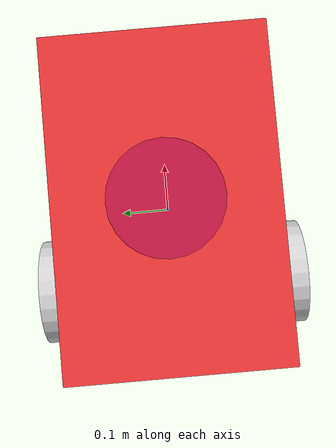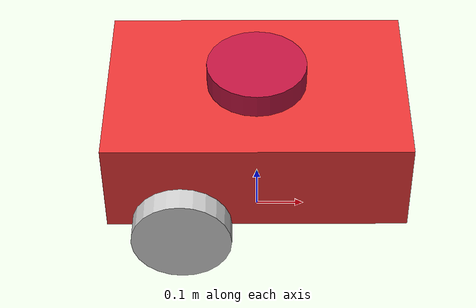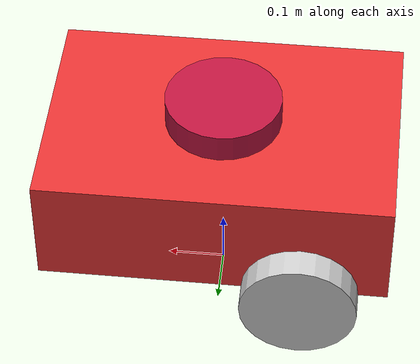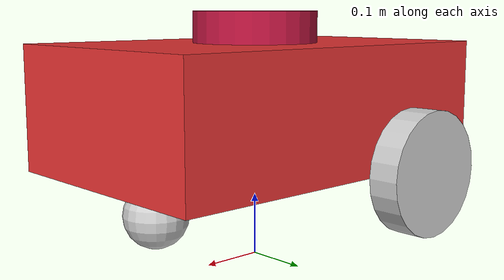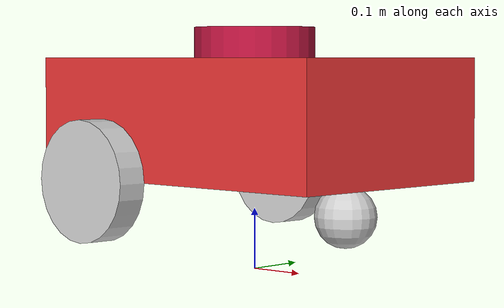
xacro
<?xml version="1.0"?>
<robot xmlns:xacro="http://www.ros.org/wiki/xacro" name="my_robot">

<material name="grey">
        <color rgba="0.8 0.8 0.8 1" />
    </material>
    <material name="black">
        <color rgba="0.9 0.2 0.2 1" />
    </material>

    <material name="orange">
        <color rgba="0.75 0.08 0.25 1" />
    </material>

    <!--.......................MAIN BODY............................-->

     <xacro:include filename="gazebo.xacro" />

    <link name = "base_footprint"/>

    <link name = "base_link">
        <visual>
            <origin xyz="0 0 0.1" rpy="0 0 0" />
            <material name="black" />
            <geometry>
                <box size="0.6 0.4 0.2" />
            </geometry>
        </visual>

        <collision>
            <geometry>
                <box size="0.6 0.4 0.2" />
            </geometry>
            <origin xyz="0 0 0.1" rpy="0 0 0" />
        </collision>

        <inertial>
            <origin xyz="0 0 0.1" rpy="0 0 0" />
            <mass value="2.0"/>
            <inertia ixx="0.0333" iyy="0.0667" izz="0.0867"
                     ixy="0.0" ixz="0.0" iyz="0.0"/>
        </inertial>

    </link>

    <link name="right_wheel_link">
        <visual>
            <geometry>
                <cylinder radius="0.1" length="0.05" />
            </geometry>
            <origin xyz="0 0 0" rpy="1.57 0 0" />
            <material name="grey" />
        </visual>

        <collision>
            <geometry>
                <cylinder radius="0.1" length="0.05" />
            </geometry>
            <origin xyz="0 0 0" rpy="1.57 0 0" />
            <surface>
                <friction>
                    <ode>
                        <mu>1.0</mu>
                        <mu2>1.0</mu2>
                    </ode>
                </friction>
            </surface>
        </collision>

        <inertial>
            <origin xyz="0 0 0" rpy="1.57 0 0" />
            <mass value="0.4"/>
            <inertia ixx="0.00104" iyy="0.00104" izz="0.002"
                     ixy="0.0" ixz="0.0" iyz="0.0"/>
        </inertial>

    </link>

    <link name="left_wheel_link">
        <visual>
            <geometry>
                <cylinder radius="0.1" length="0.05" />
            </geometry>
            <origin xyz="0 0 0" rpy="1.57 0 0" />
            <material name="grey" />
        </visual>

        <collision>
            <geometry>
                <cylinder radius="0.1" length="0.05" />
            </geometry>
            <origin xyz="0 0 0" rpy="1.57 0 0" />
            <surface>
                <friction>
                    <ode>
                        <mu>1.0</mu>
                        <mu2>1.0</mu2>
                    </ode>
                </friction>
            </surface>
        </collision>

        <inertial>
            <origin xyz="0 0 0" rpy="1.57 0 0" />
            <mass value="0.4"/>
            <inertia ixx="0.00104" iyy="0.00104" izz="0.002"
                     ixy="0.0" ixz="0.0" iyz="0.0"/>
        </inertial>

    </link>

    <link name="caster">
        <visual>
            <geometry>
                <sphere radius="0.05" />
            </geometry>
            <origin xyz="0 0 0" rpy="0 0 0" />
            <material name="grey" />
        </visual>
        <collision>
            <geometry>
                <sphere radius="0.05" />
            </geometry>
            <origin xyz="0 0 0" rpy="0 0 0" />
            <surface>
                <friction>
                    <ode>
                        <mu>0.01</mu>
                        <mu2>0.01</mu2>
                    </ode>
                </friction>
            </surface>
        </collision>

        <inertial>
            <origin xyz="0 0 0" rpy="0 0 0" />
            <mass value="0.1"/>
            <inertia ixx="0.0001" iyy="0.0001" izz="0.0001"
                     ixy="0.0" ixz="0.0" iyz="0.0"/>
        </inertial>

    </link>

    <link name="lidar">
        <visual>
            <geometry>
                <cylinder radius="0.1" length="0.05" />
            </geometry>
            <origin xyz="0 0 0" rpy="0 0 0"/>
            <material name="orange" />
        </visual>
        <collision>
            <geometry>
                <cylinder radius="0.1" length="0.05" />
            </geometry>
            <origin xyz="0 0 0" rpy="0 0 0"/>
        </collision>

        <inertial>
            <origin xyz="0 0 0" rpy="0 0 0"/>
            <mass value="0.1"/>
            <inertia ixx="0.00026" iyy="0.00026" izz="0.0005"
                     ixy="0.0" ixz="0.0" iyz="0.0"/>
        </inertial>

    </link>

    <joint name="base_joint" type="fixed">
        <parent link="base_footprint"/>
        <child link="base_link"/>
        <origin xyz="0 0 0.15" rpy="0 0 0" />
    </joint>

    <joint name="base_right_wheel_joint" type="continuous" >
        <parent link="base_link" />
        <child link="right_wheel_link" />
        <origin xyz="-0.15 -0.225 0" rpy="0 0 0" />
        <axis xyz="0 1 0"/>
    </joint>

    <joint name="base_left_wheel_joint" type="continuous">
        <parent link="base_link" />
        <child link="left_wheel_link" />
        <origin xyz="-0.15 0.225 0" rpy="0 0 0" />
        <axis xyz="0 1 0" />
    </joint>

    <joint name="base_caster_link" type="continuous">
        <parent link="base_link" />
        <child link="caster"/>
        <origin xyz="0.2 0 -0.05" rpy="0 0 0" />
    </joint>

    <joint name="base_lidar_link" type="fixed">
        <parent link="base_link" />
        <child link="lidar"/>
        <origin xyz="0 0 0.225" rpy="0 0 0" />
    </joint>

</robot>
